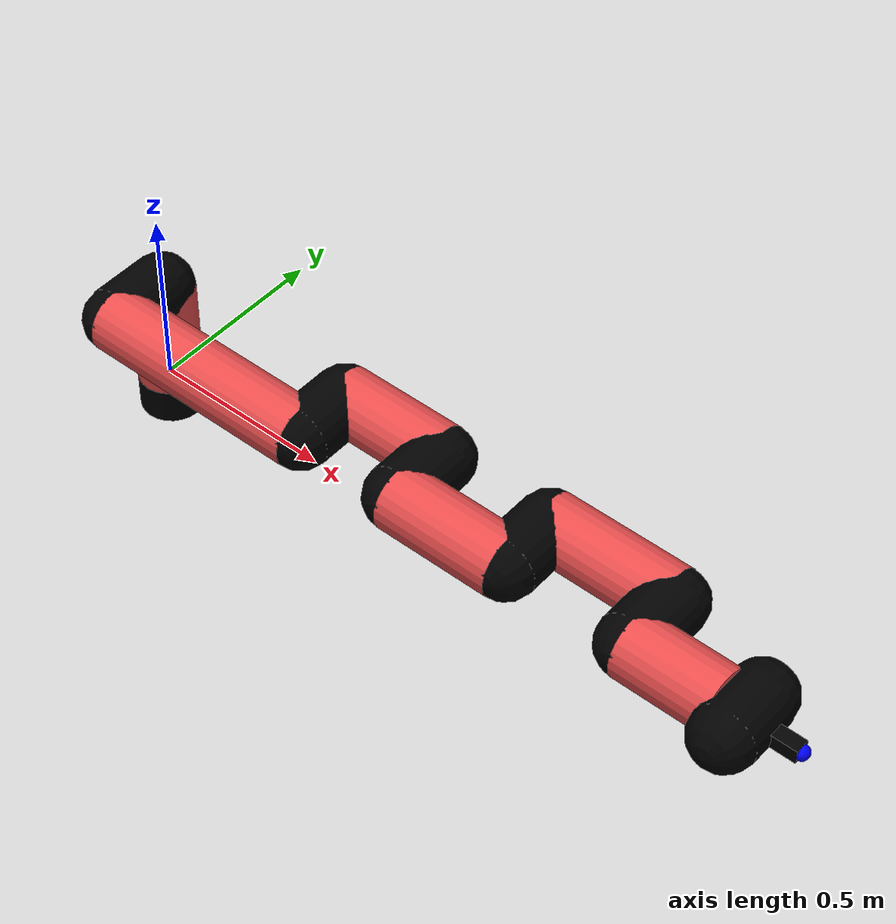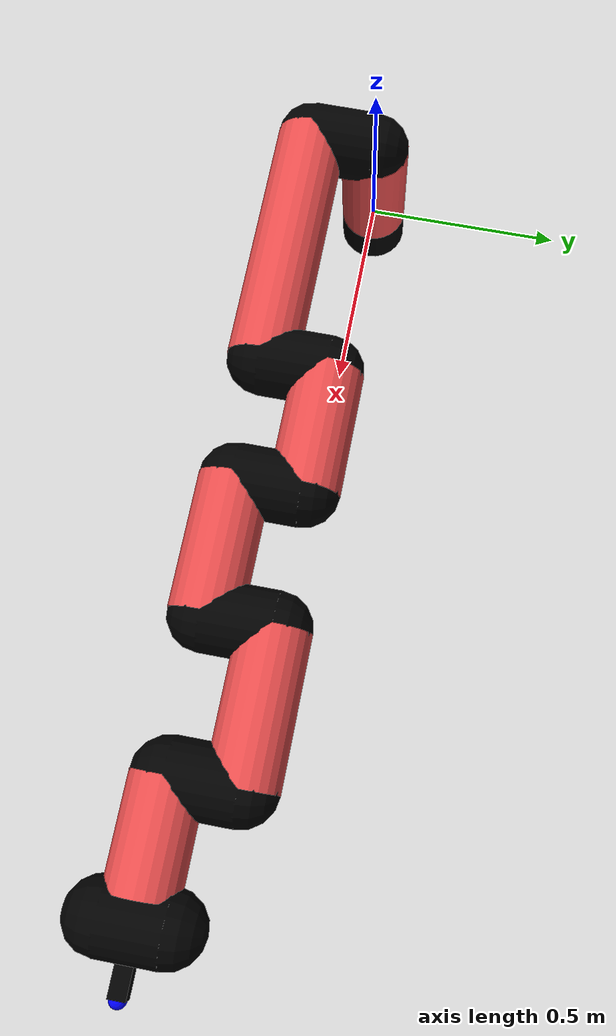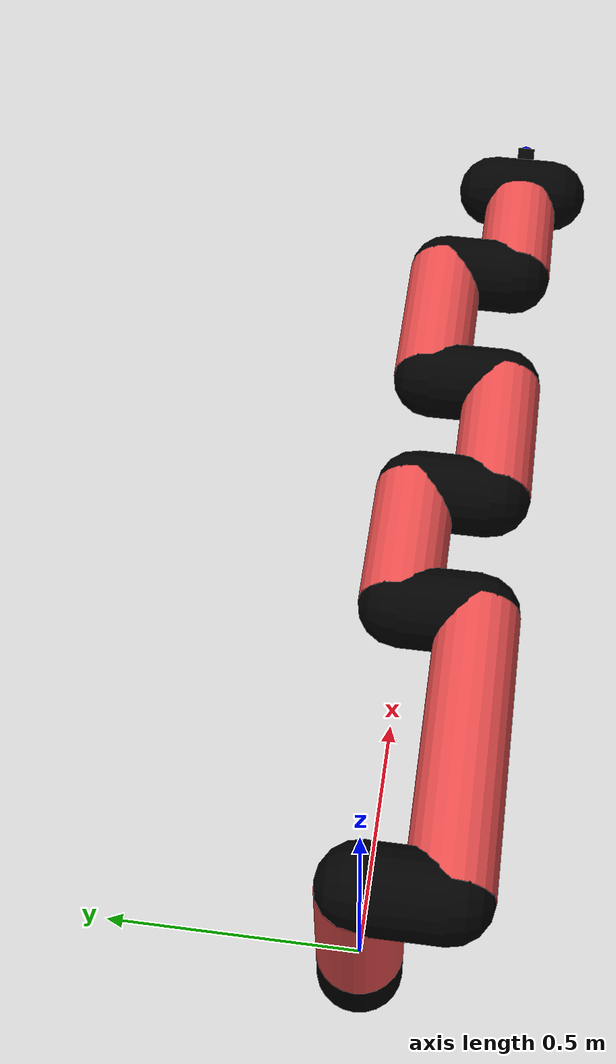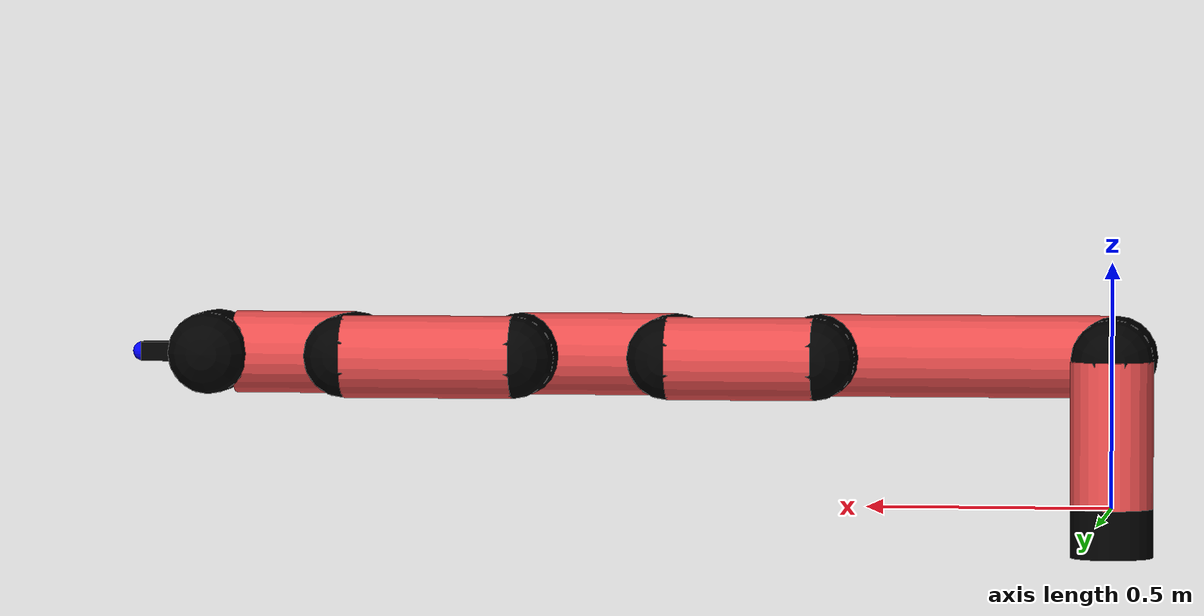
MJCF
<mujoco model="manipulator">
		<compiler angle="degree" coordinate="local" inertiafromgeom="auto" meshdir="meshes/"/>
		<option gravity="0 0 0" integrator="RK4" iterations="30" timestep="0.01"/>

		<default>
		<joint armature="1" limited="true" stiffness="10" damping="15" frictionloss="5.0"/>
		<geom conaffinity="1" condim="3" contype="1" friction=".5 .1 .1" margin="0.002"/>
		<motor ctrllimited="true"/>
		<position ctrllimited="true"/>
		</default>

		<asset>
		<texture builtin="gradient" height="100" rgb1="1.0 1.0 1.0" rgb2="1.0 1.0 1.0" type="skybox" width="100"/>
		<texture builtin="flat" height="32" name="arm_tex" rgb1="0.9 0.3 0.3" type="2d" width="32"/>
		<texture builtin="flat" height="32" name="gripper_tex" rgb1="0.0 0.0 0.0" type="cube" width="32"/>

		<material name="arm_mat" shininess="0.1" specular="0.1" texture="arm_tex"/>
		<material name="gripper_mat" shininess="1" specular="1" texture="gripper_tex"/>
		</asset>

		<worldbody>
		<light cutoff="45" diffuse=".8 .8 .8" dir="0 0.16 -1" directional="false" name="light" pos="0 -2.0 8.0" specular="0.3 0.3 0.3"/>

		<body name="base_link" pos="0 0 -0.1">
		<geom fromto="0 0 0 0 0 0.1" material="arm_mat" name="base_link" rgba="0.0 0.0 0.0 1" size="0.085" type="cylinder"/>
		</body>

		<body name="l1" pos="0 0 0">
<geom fromto="0 0 0 0 0 0.3" material="arm_mat" name="l1" rgba="0.9 0.3 0.3 1" size="0.085" type="cylinder"/>
<geom fromto="0 0 0.3 0 -0.16 0.3" material="arm_mat" name="l1_ex" rgba="0.0 0.0 0.0 1" size="0.085" type="capsule"/>
<joint axis="0 0 1" name="j1" pos="0 0 0" range="-90 90" damping="29.78" frictionloss="10.25"/>

<body name="l2" pos="0 -0.16 0.3">
<geom fromto="0 0 0 0.61 0 0" material="arm_mat" name="l2" rgba="0.9 0.3 0.3 1" size="0.085" type="cylinder"/>
<geom fromto="0.61 0 0 0.61 0.16 0" material="arm_mat" name="l2_ex" rgba="0.0 0.0 0.0 1" size="0.085" type="capsule"/>
<joint axis="0.0 1.0 0.0" name="j2" pos="0 0 0" range="-90 60" damping="31.41" frictionloss="9.68"/>

<body name="l3" pos="0.61 0.16 0">
<geom fromto="0 0 0 0.3 0 0" material="arm_mat" name="l3" rgba="0.9 0.3 0.3 1" size="0.085" type="cylinder"/>
<geom fromto="0.3 0 0 0.3 -0.16 0" material="arm_mat" name="l3_ex" rgba="0.0 0.0 0.0 1" size="0.085" type="capsule"/>
<joint axis="0.0 1.0 0.0" name="j3" pos="0 0 0" range="-30 60" damping="22.62" frictionloss="10.64"/>

<body name="l4" pos="0.3 -0.16 0">
<geom fromto="0 0 0 0.32 0 0" material="arm_mat" name="l4" rgba="0.9 0.3 0.3 1" size="0.085" type="cylinder"/>
<geom fromto="0.32 0 0 0.32 0.16 0" material="arm_mat" name="l4_ex" rgba="0.0 0.0 0.0 1" size="0.085" type="capsule"/>
<joint axis="0.0 1.0 0.0" name="j4" pos="0 0 0" range="-30 60" damping="25.5" frictionloss="11.69"/>

<body name="l5" pos="0.32 0.16 0">
<geom fromto="0 0 0 0.35 0 0" material="arm_mat" name="l5" rgba="0.9 0.3 0.3 1" size="0.085" type="cylinder"/>
<geom fromto="0.35 0 0 0.35 -0.16 0" material="arm_mat" name="l5_ex" rgba="0.0 0.0 0.0 1" size="0.085" type="capsule"/>
<joint axis="0.0 1.0 0.0" name="j5" pos="0 0 0" range="-30 60" damping="24.52" frictionloss="11.71"/>

<body name="l6" pos="0.35 -0.16 0">
<geom fromto="0 0 0 0.25 0 0" material="arm_mat" name="l6" rgba="0.9 0.3 0.3 1" size="0.085" type="cylinder"/>
<joint axis="0.0 1.0 0.0" name="j6" pos="0 0 0" range="-30 60" damping="26.27" frictionloss="10.02"/>

<body name="gripper" pos="0.25 0 0">
<geom fromto="0.05 -0.07 0 0.05 0.07 0" material="gripper_mat" name="gripper" rgba="0.0 0.0 0.0 1" size="0.085" type="capsule"/><joint axis="1 0 0" name="j7" pos="0 0 0" range="-90 90" damping="15" frictionloss="5.0"/><body name="finger" pos="0.1 0 0">
<geom fromto="0 0.0 0 0.1 0.0 0" material="gripper_mat" name="finger" rgba="0.0 0.0 0.0 1" size="0.020 0.06 0.06" type="box"/>
</body>
<site name="current" pos="0.2 0. 0.0" rgba="0. 0. 1.0 1" size="0.02" type="sphere"/>
</body>
</body>
</body>
</body>
</body>
</body>
</body>
</worldbody>
<actuator>
<motor ctrllimited="true" ctrlrange="-1.0 1.0" joint="j1" gear="77.06"/>
<motor ctrllimited="true" ctrlrange="-1.0 1.0" joint="j2" gear="98.51"/>
<motor ctrllimited="true" ctrlrange="-1.0 1.0" joint="j3" gear="98.6"/>
<motor ctrllimited="true" ctrlrange="-1.0 1.0" joint="j4" gear="61.43"/>
<motor ctrllimited="true" ctrlrange="-1.0 1.0" joint="j5" gear="67.14"/>
<motor ctrllimited="true" ctrlrange="-1.0 1.0" joint="j6" gear="87.69"/>
<motor ctrllimited="true" ctrlrange="-1.0 1.0" joint="j7" gear="80"/>
</actuator>
</mujoco>
